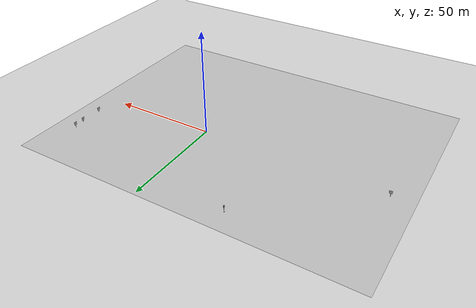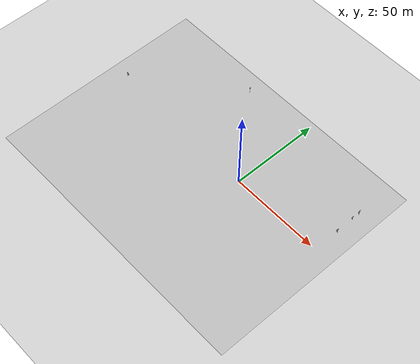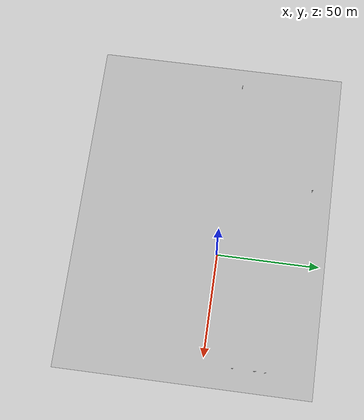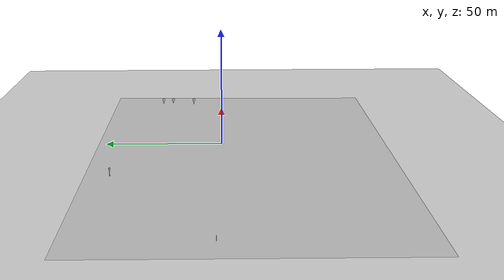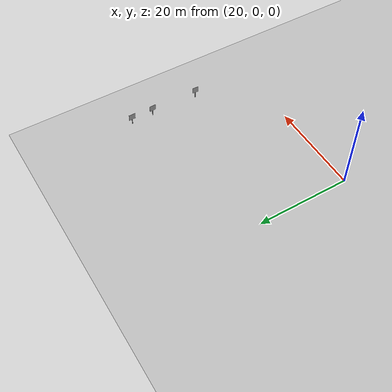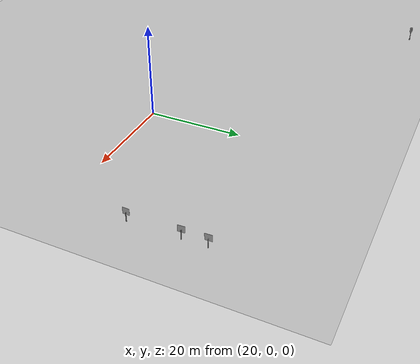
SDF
<sdf version="1.7">
 <world name="default">
  <light name="sun" type="directional">
   <pose>0 0 10 0 -0 0</pose>
   <diffuse>0.8 0.8 0.8 1</diffuse>
   <specular>0.2 0.2 0.2 1</specular>
   <attenuation>
    <range>1000</range>
    <constant>0.9</constant>
    <linear>0.01</linear>
    <quadratic>0.001</quadratic>
   </attenuation>
   <direction>-0.5 0.1 -0.9</direction>
   <spot><inner_angle>0</inner_angle><outer_angle>0</outer_angle><falloff>0</falloff></spot>
  </light>
  <model name="ground_plane">
   <static>1</static>
   <link name="link">
    <collision name="collision">
     <geometry><plane><normal>0 0 1</normal><size>100 100</size></plane></geometry>
     <surface><friction><ode><mu>100</mu><mu2>50</mu2></ode></friction></surface>
    </collision>
    <visual name="visual">
     <cast_shadows>0</cast_shadows>
     <geometry><plane><normal>0 0 1</normal><size>100 100</size></plane></geometry>
     <material>
      <script><uri>file://media/materials/scripts/gazebo.material</uri><name>Gazebo/Grey</name></script>
     </material>
    </visual>
   </link>
  </model>
  <gravity>0 0 -9.8</gravity>
  <magnetic_field>6e-06 2.3e-05 -4.2e-05</magnetic_field>
  <atmosphere type="adiabatic"/>
  <physics type="ode">
   <max_step_size>0.001</max_step_size>
   <real_time_factor>1</real_time_factor>
   <real_time_update_rate>1000</real_time_update_rate>
  </physics>
  <scene><ambient>0.4 0.4 0.4 1</ambient><background>0.7 0.7 0.7 1</background><shadows>1</shadows></scene>
  <audio><device>default</device></audio>
  <spherical_coordinates>
   <surface_model>EARTH_WGS84</surface_model>
   <latitude_deg>0</latitude_deg>
   <longitude_deg>0</longitude_deg>
   <elevation>0</elevation>
   <heading_deg>0</heading_deg>
  </spherical_coordinates>
  <model name="son_yol_1">
   <link name="link_0">
    <inertial>
     <mass>1</mass>
     <inertia>
      <ixx>0.166667</ixx>
      <ixy>0</ixy>
      <ixz>0</ixz>
      <iyy>0.166667</iyy>
      <iyz>0</iyz>
      <izz>0.166667</izz>
     </inertia>
    </inertial>
    <pose>0 -0 -0 1.5589 -0 0</pose>
    <visual name="visual">
     <geometry>
      <mesh>
       <uri>/home/dervis/similasyon_ws/src/self_driving_car_pkg/meshes/SON_YOL_1.obj</uri>
       <scale>1 1 1</scale>
      </mesh>
     </geometry>
     <material>
      <script>
       <uri>/home/dervis/similasyon_ws/src/self_driving_car_pkg/models/son_yol_1/materials/scripts</uri>
       <uri>/home/dervis/similasyon_ws/src/self_driving_car_pkg/models/son_yol_1/materials/textures</uri>
       <name>yol/Diffuse</name>
      </script>
     </material>
    </visual>
    <collision name="collision">
     <geometry>
      <mesh>
       <uri>/home/dervis/similasyon_ws/src/self_driving_car_pkg/meshes/SON_YOL_1.obj</uri>
       <scale>1 1 1</scale>
      </mesh>
     </geometry>
     <surface>
      <friction>
       <ode><mu>1</mu><mu2>1</mu2><fdir1>0 0 0</fdir1><slip1>0</slip1><slip2>0</slip2></ode>
       <torsional>
        <coefficient>1</coefficient>
        <patch_radius>0</patch_radius>
        <surface_radius>0</surface_radius>
        <use_patch_radius>1</use_patch_radius>
        <ode><slip>0</slip></ode>
       </torsional>
      </friction>
      <bounce><restitution_coefficient>0</restitution_coefficient><threshold>1e+06</threshold></bounce>
      <contact>
       <collide_without_contact>0</collide_without_contact>
       <collide_without_contact_bitmask>1</collide_without_contact_bitmask>
       <collide_bitmask>1</collide_bitmask>
       <ode>
        <soft_cfm>0</soft_cfm>
        <soft_erp>0.2</soft_erp>
        <kp>1e+13</kp>
        <kd>1</kd>
        <max_vel>0.01</max_vel>
        <min_depth>0</min_depth>
       </ode>
       <bullet>
        <split_impulse>1</split_impulse>
        <split_impulse_penetration_threshold>-0.01</split_impulse_penetration_threshold>
        <soft_cfm>0</soft_cfm>
        <soft_erp>0.2</soft_erp>
        <kp>1e+13</kp>
        <kd>1</kd>
       </bullet>
      </contact>
     </surface>
    </collision>
   </link>
   <static>1</static>
   <pose>62.2552 51.053 1.41424 0.01733 -0 0</pose>
  </model>
  <model name="trafik_işareti_epark">
   <link name="link_0">
    <inertial>
     <mass>1</mass>
     <inertia>
      <ixx>0.166667</ixx>
      <ixy>0</ixy>
      <ixz>0</ixz>
      <iyy>0.166667</iyy>
      <iyz>0</iyz>
      <izz>0.166667</izz>
     </inertia>
    </inertial>
    <pose>-0.009139 -0.004174 0.375388 1.56982 -0 0</pose>
    <visual name="visual">
     <geometry>
      <mesh>
       <uri>/home/dervis/similasyon_ws/src/self_driving_car_pkg/meshes/trafik_işareti_direk.obj</uri>
       <scale>1 1 1</scale>
      </mesh>
     </geometry>
     <material>
      <lighting>1</lighting>
      <script><uri>file://media/materials/scripts/gazebo.material</uri><name>Gazebo/Grey</name></script>
      <shader type="pixel"/>
      <emissive>0 0 0 1</emissive>
     </material>
    </visual>
    <collision name="collision">
     <geometry>
      <mesh>
       <uri>/home/dervis/similasyon_ws/src/self_driving_car_pkg/meshes/trafik_işareti_direk.obj</uri>
       <scale>1 1 1</scale>
      </mesh>
     </geometry>
     <surface>
      <friction>
       <ode><mu>1</mu><mu2>1</mu2><fdir1>0 0 0</fdir1><slip1>0</slip1><slip2>0</slip2></ode>
       <torsional>
        <coefficient>1</coefficient>
        <patch_radius>0</patch_radius>
        <surface_radius>0</surface_radius>
        <use_patch_radius>1</use_patch_radius>
        <ode><slip>0</slip></ode>
       </torsional>
      </friction>
      <bounce><restitution_coefficient>0</restitution_coefficient><threshold>1e+06</threshold></bounce>
      <contact>
       <collide_without_contact>0</collide_without_contact>
       <collide_without_contact_bitmask>1</collide_without_contact_bitmask>
       <collide_bitmask>1</collide_bitmask>
       <ode>
        <soft_cfm>0</soft_cfm>
        <soft_erp>0.2</soft_erp>
        <kp>1e+13</kp>
        <kd>1</kd>
        <max_vel>0.01</max_vel>
        <min_depth>0</min_depth>
       </ode>
       <bullet>
        <split_impulse>1</split_impulse>
        <split_impulse_penetration_threshold>-0.01</split_impulse_penetration_threshold>
        <soft_cfm>0</soft_cfm>
        <soft_erp>0.2</soft_erp>
        <kp>1e+13</kp>
        <kd>1</kd>
       </bullet>
      </contact>
     </surface>
    </collision>
   </link>
   <link name="link_1">
    <inertial>
     <mass>1</mass>
     <inertia>
      <ixx>0.166667</ixx>
      <ixy>0</ixy>
      <ixz>0</ixz>
      <iyy>0.166667</iyy>
      <iyz>0</iyz>
      <izz>0.166667</izz>
     </inertia>
    </inertial>
    <pose>0.009139 0.004174 -0.375386 1.55964 -0 0</pose>
    <visual name="visual">
     <geometry>
      <mesh>
       <uri>/home/dervis/similasyon_ws/src/self_driving_car_pkg/meshes/trafik_işareti_kare.obj</uri>
       <scale>1 1 1</scale>
      </mesh>
     </geometry>
     <material>
      <script>
       <uri>model://trafik_işareti_epark/materials/script</uri>
       <uri>model://trafik_işareti_epark/materials/texture</uri>
       <name>trafik_işareti_epark/Diffuse</name>
      </script>
     </material>
    </visual>
    <collision name="collision">
     <geometry>
      <mesh>
       <uri>/home/dervis/similasyon_ws/src/self_driving_car_pkg/meshes/trafik_işareti_kare.obj</uri>
       <scale>1 1 1</scale>
      </mesh>
     </geometry>
     <surface>
      <friction>
       <ode><mu>1</mu><mu2>1</mu2><fdir1>0 0 0</fdir1><slip1>0</slip1><slip2>0</slip2></ode>
       <torsional>
        <coefficient>1</coefficient>
        <patch_radius>0</patch_radius>
        <surface_radius>0</surface_radius>
        <use_patch_radius>1</use_patch_radius>
        <ode><slip>0</slip></ode>
       </torsional>
      </friction>
      <bounce><restitution_coefficient>0</restitution_coefficient><threshold>1e+06</threshold></bounce>
      <contact>
       <collide_without_contact>0</collide_without_contact>
       <collide_without_contact_bitmask>1</collide_without_contact_bitmask>
       <collide_bitmask>1</collide_bitmask>
       <ode>
        <soft_cfm>0</soft_cfm>
        <soft_erp>0.2</soft_erp>
        <kp>1e+13</kp>
        <kd>1</kd>
        <max_vel>0.01</max_vel>
        <min_depth>0</min_depth>
       </ode>
       <bullet>
        <split_impulse>1</split_impulse>
        <split_impulse_penetration_threshold>-0.01</split_impulse_penetration_threshold>
        <soft_cfm>0</soft_cfm>
        <soft_erp>0.2</soft_erp>
        <kp>1e+13</kp>
        <kd>1</kd>
       </bullet>
      </contact>
     </surface>
    </collision>
   </link>
   <joint name="link_0_JOINT_1" type="fixed">
    <parent>link_0</parent>
    <child>link_1</child>
    <physics>
     <ode><limit><cfm>0</cfm><erp>0.2</erp></limit><suspension><cfm>0</cfm><erp>0.2</erp></suspension></ode>
    </physics>
   </joint>
   <static>1</static>
   <pose>53.7051 14.0286 1.86916 0 0 -1.61925</pose>
  </model>
  <model name="trafik_işareti_epark_0">
   <link name="link_0">
    <inertial>
     <mass>1</mass>
     <inertia>
      <ixx>0.166667</ixx>
      <ixy>0</ixy>
      <ixz>0</ixz>
      <iyy>0.166667</iyy>
      <iyz>0</iyz>
      <izz>0.166667</izz>
     </inertia>
    </inertial>
    <pose>-0.009139 -0.004174 0.375388 1.56982 -0 0</pose>
    <visual name="visual">
     <geometry>
      <mesh>
       <uri>/home/dervis/similasyon_ws/src/self_driving_car_pkg/meshes/trafik_işareti_direk.obj</uri>
       <scale>1 1 1</scale>
      </mesh>
     </geometry>
     <material>
      <lighting>1</lighting>
      <script><uri>file://media/materials/scripts/gazebo.material</uri><name>Gazebo/Grey</name></script>
      <shader type="pixel"/>
      <emissive>0 0 0 1</emissive>
     </material>
    </visual>
    <collision name="collision">
     <geometry>
      <mesh>
       <uri>/home/dervis/similasyon_ws/src/self_driving_car_pkg/meshes/trafik_işareti_direk.obj</uri>
       <scale>1 1 1</scale>
      </mesh>
     </geometry>
     <surface>
      <friction>
       <ode><mu>1</mu><mu2>1</mu2><fdir1>0 0 0</fdir1><slip1>0</slip1><slip2>0</slip2></ode>
       <torsional>
        <coefficient>1</coefficient>
        <patch_radius>0</patch_radius>
        <surface_radius>0</surface_radius>
        <use_patch_radius>1</use_patch_radius>
        <ode><slip>0</slip></ode>
       </torsional>
      </friction>
      <bounce><restitution_coefficient>0</restitution_coefficient><threshold>1e+06</threshold></bounce>
      <contact>
       <collide_without_contact>0</collide_without_contact>
       <collide_without_contact_bitmask>1</collide_without_contact_bitmask>
       <collide_bitmask>1</collide_bitmask>
       <ode>
        <soft_cfm>0</soft_cfm>
        <soft_erp>0.2</soft_erp>
        <kp>1e+13</kp>
        <kd>1</kd>
        <max_vel>0.01</max_vel>
        <min_depth>0</min_depth>
       </ode>
       <bullet>
        <split_impulse>1</split_impulse>
        <split_impulse_penetration_threshold>-0.01</split_impulse_penetration_threshold>
        <soft_cfm>0</soft_cfm>
        <soft_erp>0.2</soft_erp>
        <kp>1e+13</kp>
        <kd>1</kd>
       </bullet>
      </contact>
     </surface>
    </collision>
   </link>
   <link name="link_1">
    <inertial>
     <mass>1</mass>
     <inertia>
      <ixx>0.166667</ixx>
      <ixy>0</ixy>
      <ixz>0</ixz>
      <iyy>0.166667</iyy>
      <iyz>0</iyz>
      <izz>0.166667</izz>
     </inertia>
    </inertial>
    <pose>0.009139 0.004174 -0.375386 1.55964 -0 0</pose>
    <visual name="visual">
     <geometry>
      <mesh>
       <uri>/home/dervis/similasyon_ws/src/self_driving_car_pkg/meshes/trafik_işareti_kare.obj</uri>
       <scale>1 1 1</scale>
      </mesh>
     </geometry>
     <material>
      <script>
       <uri>model://trafik_işareti_epark/materials/script</uri>
       <uri>model://trafik_işareti_epark/materials/texture</uri>
       <name>trafik_işareti_epark/Diffuse</name>
      </script>
     </material>
    </visual>
    <collision name="collision">
     <geometry>
      <mesh>
       <uri>/home/dervis/similasyon_ws/src/self_driving_car_pkg/meshes/trafik_işareti_kare.obj</uri>
       <scale>1 1 1</scale>
      </mesh>
     </geometry>
     <surface>
      <friction>
       <ode><mu>1</mu><mu2>1</mu2><fdir1>0 0 0</fdir1><slip1>0</slip1><slip2>0</slip2></ode>
       <torsional>
        <coefficient>1</coefficient>
        <patch_radius>0</patch_radius>
        <surface_radius>0</surface_radius>
        <use_patch_radius>1</use_patch_radius>
        <ode><slip>0</slip></ode>
       </torsional>
      </friction>
      <bounce><restitution_coefficient>0</restitution_coefficient><threshold>1e+06</threshold></bounce>
      <contact>
       <collide_without_contact>0</collide_without_contact>
       <collide_without_contact_bitmask>1</collide_without_contact_bitmask>
       <collide_bitmask>1</collide_bitmask>
       <ode>
        <soft_cfm>0</soft_cfm>
        <soft_erp>0.2</soft_erp>
        <kp>1e+13</kp>
        <kd>1</kd>
        <max_vel>0.01</max_vel>
        <min_depth>0</min_depth>
       </ode>
       <bullet>
        <split_impulse>1</split_impulse>
        <split_impulse_penetration_threshold>-0.01</split_impulse_penetration_threshold>
        <soft_cfm>0</soft_cfm>
        <soft_erp>0.2</soft_erp>
        <kp>1e+13</kp>
        <kd>1</kd>
       </bullet>
      </contact>
     </surface>
    </collision>
   </link>
   <joint name="link_0_JOINT_1" type="fixed">
    <parent>link_0</parent>
    <child>link_1</child>
    <physics>
     <ode><limit><cfm>0</cfm><erp>0.2</erp></limit><suspension><cfm>0</cfm><erp>0.2</erp></suspension></ode>
    </physics>
   </joint>
   <static>1</static>
   <pose>53.6997 24.4117 1.90878 0 0 -1.52739</pose>
  </model>
  <model name="trafik_işareti_park">
   <link name="link_0">
    <inertial>
     <mass>1</mass>
     <inertia>
      <ixx>0.166667</ixx>
      <ixy>0</ixy>
      <ixz>0</ixz>
      <iyy>0.166667</iyy>
      <iyz>0</iyz>
      <izz>0.166667</izz>
     </inertia>
    </inertial>
    <pose>-0.009139 -0.004174 0.375388 1.56982 -0 0</pose>
    <visual name="visual">
     <geometry>
      <mesh>
       <uri>/home/dervis/similasyon_ws/src/self_driving_car_pkg/meshes/trafik_işareti_direk.obj</uri>
       <scale>1 1 1</scale>
      </mesh>
     </geometry>
     <material>
      <lighting>1</lighting>
      <script><uri>file://media/materials/scripts/gazebo.material</uri><name>Gazebo/Grey</name></script>
      <shader type="pixel"/>
      <emissive>0 0 0 1</emissive>
     </material>
    </visual>
    <collision name="collision">
     <geometry>
      <mesh>
       <uri>/home/dervis/similasyon_ws/src/self_driving_car_pkg/meshes/trafik_işareti_direk.obj</uri>
       <scale>1 1 1</scale>
      </mesh>
     </geometry>
     <surface>
      <friction>
       <ode><mu>1</mu><mu2>1</mu2><fdir1>0 0 0</fdir1><slip1>0</slip1><slip2>0</slip2></ode>
       <torsional>
        <coefficient>1</coefficient>
        <patch_radius>0</patch_radius>
        <surface_radius>0</surface_radius>
        <use_patch_radius>1</use_patch_radius>
        <ode><slip>0</slip></ode>
       </torsional>
      </friction>
      <bounce><restitution_coefficient>0</restitution_coefficient><threshold>1e+06</threshold></bounce>
      <contact>
       <collide_without_contact>0</collide_without_contact>
       <collide_without_contact_bitmask>1</collide_without_contact_bitmask>
       <collide_bitmask>1</collide_bitmask>
       <ode>
        <soft_cfm>0</soft_cfm>
        <soft_erp>0.2</soft_erp>
        <kp>1e+13</kp>
        <kd>1</kd>
        <max_vel>0.01</max_vel>
        <min_depth>0</min_depth>
       </ode>
       <bullet>
        <split_impulse>1</split_impulse>
        <split_impulse_penetration_threshold>-0.01</split_impulse_penetration_threshold>
        <soft_cfm>0</soft_cfm>
        <soft_erp>0.2</soft_erp>
        <kp>1e+13</kp>
        <kd>1</kd>
       </bullet>
      </contact>
     </surface>
    </collision>
   </link>
   <link name="link_1">
    <inertial>
     <mass>1</mass>
     <inertia>
      <ixx>0.166667</ixx>
      <ixy>0</ixy>
      <ixz>0</ixz>
      <iyy>0.166667</iyy>
      <iyz>0</iyz>
      <izz>0.166667</izz>
     </inertia>
    </inertial>
    <pose>0.009139 0.004174 -0.375386 1.55964 -0 0</pose>
    <visual name="visual">
     <geometry>
      <mesh>
       <uri>/home/dervis/similasyon_ws/src/self_driving_car_pkg/meshes/trafik_işareti_kare.obj</uri>
       <scale>1 1 1</scale>
      </mesh>
     </geometry>
     <material>
      <script>
       <uri>model://trafik_işareti_park/materials/script</uri>
       <uri>model://trafik_işareti_park/materials/texture</uri>
       <name>trafik_işareti_park/Diffuse</name>
      </script>
     </material>
    </visual>
    <collision name="collision">
     <geometry>
      <mesh>
       <uri>/home/dervis/similasyon_ws/src/self_driving_car_pkg/meshes/trafik_işareti_kare.obj</uri>
       <scale>1 1 1</scale>
      </mesh>
     </geometry>
     <surface>
      <friction>
       <ode><mu>1</mu><mu2>1</mu2><fdir1>0 0 0</fdir1><slip1>0</slip1><slip2>0</slip2></ode>
       <torsional>
        <coefficient>1</coefficient>
        <patch_radius>0</patch_radius>
        <surface_radius>0</surface_radius>
        <use_patch_radius>1</use_patch_radius>
        <ode><slip>0</slip></ode>
       </torsional>
      </friction>
      <bounce><restitution_coefficient>0</restitution_coefficient><threshold>1e+06</threshold></bounce>
      <contact>
       <collide_without_contact>0</collide_without_contact>
       <collide_without_contact_bitmask>1</collide_without_contact_bitmask>
       <collide_bitmask>1</collide_bitmask>
       <ode>
        <soft_cfm>0</soft_cfm>
        <soft_erp>0.2</soft_erp>
        <kp>1e+13</kp>
        <kd>1</kd>
        <max_vel>0.01</max_vel>
        <min_depth>0</min_depth>
       </ode>
       <bullet>
        <split_impulse>1</split_impulse>
        <split_impulse_penetration_threshold>-0.01</split_impulse_penetration_threshold>
        <soft_cfm>0</soft_cfm>
        <soft_erp>0.2</soft_erp>
        <kp>1e+13</kp>
        <kd>1</kd>
       </bullet>
      </contact>
     </surface>
    </collision>
   </link>
   <joint name="link_0_JOINT_1" type="fixed">
    <parent>link_0</parent>
    <child>link_1</child>
    <physics>
     <ode><limit><cfm>0</cfm><erp>0.2</erp></limit><suspension><cfm>0</cfm><erp>0.2</erp></suspension></ode>
    </physics>
   </joint>
   <static>1</static>
   <pose>53.6653 29.2424 1.93508 0 -0 -1.55706</pose>
  </model>
  <model name="trafik_işareti_durak">
   <link name="link_0">
    <inertial>
     <mass>1</mass>
     <inertia>
      <ixx>0.166667</ixx>
      <ixy>0</ixy>
      <ixz>0</ixz>
      <iyy>0.166667</iyy>
      <iyz>0</iyz>
      <izz>0.166667</izz>
     </inertia>
    </inertial>
    <pose>-0.009139 -0.004174 0.375388 1.56982 -0 0</pose>
    <visual name="visual">
     <geometry>
      <mesh>
       <uri>/home/dervis/similasyon_ws/src/self_driving_car_pkg/meshes/trafik_işareti_direk.obj</uri>
       <scale>1 1 1</scale>
      </mesh>
     </geometry>
     <material>
      <lighting>1</lighting>
      <script><uri>file://media/materials/scripts/gazebo.material</uri><name>Gazebo/Grey</name></script>
      <shader type="pixel"/>
      <emissive>0 0 0 1</emissive>
     </material>
    </visual>
    <collision name="collision">
     <geometry>
      <mesh>
       <uri>/home/dervis/similasyon_ws/src/self_driving_car_pkg/meshes/trafik_işareti_direk.obj</uri>
       <scale>1 1 1</scale>
      </mesh>
     </geometry>
     <surface>
      <friction>
       <ode><mu>1</mu><mu2>1</mu2><fdir1>0 0 0</fdir1><slip1>0</slip1><slip2>0</slip2></ode>
       <torsional>
        <coefficient>1</coefficient>
        <patch_radius>0</patch_radius>
        <surface_radius>0</surface_radius>
        <use_patch_radius>1</use_patch_radius>
        <ode><slip>0</slip></ode>
       </torsional>
      </friction>
      <bounce><restitution_coefficient>0</restitution_coefficient><threshold>1e+06</threshold></bounce>
      <contact>
       <collide_without_contact>0</collide_without_contact>
       <collide_without_contact_bitmask>1</collide_without_contact_bitmask>
       <collide_bitmask>1</collide_bitmask>
       <ode>
        <soft_cfm>0</soft_cfm>
        <soft_erp>0.2</soft_erp>
        <kp>1e+13</kp>
        <kd>1</kd>
        <max_vel>0.01</max_vel>
        <min_depth>0</min_depth>
       </ode>
       <bullet>
        <split_impulse>1</split_impulse>
        <split_impulse_penetration_threshold>-0.01</split_impulse_penetration_threshold>
        <soft_cfm>0</soft_cfm>
        <soft_erp>0.2</soft_erp>
        <kp>1e+13</kp>
        <kd>1</kd>
       </bullet>
      </contact>
     </surface>
    </collision>
   </link>
   <link name="link_1">
    <inertial>
     <mass>1</mass>
     <inertia>
      <ixx>0.166667</ixx>
      <ixy>0</ixy>
      <ixz>0</ixz>
      <iyy>0.166667</iyy>
      <iyz>0</iyz>
      <izz>0.166667</izz>
     </inertia>
    </inertial>
    <pose>0.009139 0.004174 -0.375386 1.55964 -0 0</pose>
    <visual name="visual">
     <geometry>
      <mesh>
       <uri>/home/dervis/similasyon_ws/src/self_driving_car_pkg/meshes/trafik_işareti_kare.obj</uri>
       <scale>1 1 1</scale>
      </mesh>
     </geometry>
     <material>
      <script>
       <uri>model://trafik_işareti_durak/materials/script</uri>
       <uri>model://trafik_işareti_durak/materials/texture</uri>
       <name>trafik_işareti_durak/Diffuse</name>
      </script>
     </material>
    </visual>
    <collision name="collision">
     <geometry>
      <mesh>
       <uri>/home/dervis/similasyon_ws/src/self_driving_car_pkg/meshes/trafik_işareti_kare.obj</uri>
       <scale>1 1 1</scale>
      </mesh>
     </geometry>
     <surface>
      <friction>
       <ode><mu>1</mu><mu2>1</mu2><fdir1>0 0 0</fdir1><slip1>0</slip1><slip2>0</slip2></ode>
       <torsional>
        <coefficient>1</coefficient>
        <patch_radius>0</patch_radius>
        <surface_radius>0</surface_radius>
        <use_patch_radius>1</use_patch_radius>
        <ode><slip>0</slip></ode>
       </torsional>
      </friction>
      <bounce><restitution_coefficient>0</restitution_coefficient><threshold>1e+06</threshold></bounce>
      <contact>
       <collide_without_contact>0</collide_without_contact>
       <collide_without_contact_bitmask>1</collide_without_contact_bitmask>
       <collide_bitmask>1</collide_bitmask>
       <ode>
        <soft_cfm>0</soft_cfm>
        <soft_erp>0.2</soft_erp>
        <kp>1e+13</kp>
        <kd>1</kd>
        <max_vel>0.01</max_vel>
        <min_depth>0</min_depth>
       </ode>
       <bullet>
        <split_impulse>1</split_impulse>
        <split_impulse_penetration_threshold>-0.01</split_impulse_penetration_threshold>
        <soft_cfm>0</soft_cfm>
        <soft_erp>0.2</soft_erp>
        <kp>1e+13</kp>
        <kd>1</kd>
       </bullet>
      </contact>
     </surface>
    </collision>
   </link>
   <joint name="link_0_JOINT_1" type="fixed">
    <parent>link_0</parent>
    <child>link_1</child>
    <physics>
     <ode><limit><cfm>0</cfm><erp>0.2</erp></limit><suspension><cfm>0</cfm><erp>0.2</erp></suspension></ode>
    </physics>
   </joint>
   <static>1</static>
   <pose>-88.6678 1.99437 1.8236 0 -0 3.11801</pose>
  </model>
  <model name="trafik_lambası">
   <link name="link_0">
    <inertial>
     <mass>1</mass>
     <inertia>
      <ixx>0.166667</ixx>
      <ixy>0</ixy>
      <ixz>0</ixz>
      <iyy>0.166667</iyy>
      <iyz>0</iyz>
      <izz>0.166667</izz>
     </inertia>
    </inertial>
    <pose>2e-06 1e-06 -2e-06 1.56987 -0 0</pose>
    <visual name="visual">
     <geometry>
      <mesh>
       <uri>/home/dervis/similasyon_ws/src/self_driving_car_pkg/meshes/trafik_lamba_son.obj</uri>
       <scale>1 1 1</scale>
      </mesh>
     </geometry>
     <material>
      <lighting>1</lighting>
      <script><uri>file://media/materials/scripts/gazebo.material</uri><name>Gazebo/Grey</name></script>
      <shader type="pixel"/>
     </material>
    </visual>
    <collision name="collision">
     <geometry>
      <mesh>
       <uri>/home/dervis/similasyon_ws/src/self_driving_car_pkg/meshes/trafik_lamba_son.obj</uri>
       <scale>1 1 1</scale>
      </mesh>
     </geometry>
     <surface>
      <friction>
       <ode><mu>1</mu><mu2>1</mu2><fdir1>0 0 0</fdir1><slip1>0</slip1><slip2>0</slip2></ode>
       <torsional>
        <coefficient>1</coefficient>
        <patch_radius>0</patch_radius>
        <surface_radius>0</surface_radius>
        <use_patch_radius>1</use_patch_radius>
        <ode><slip>0</slip></ode>
       </torsional>
      </friction>
      <bounce><restitution_coefficient>0</restitution_coefficient><threshold>1e+06</threshold></bounce>
      <contact>
       <collide_without_contact>0</collide_without_contact>
       <collide_without_contact_bitmask>1</collide_without_contact_bitmask>
       <collide_bitmask>1</collide_bitmask>
       <ode>
        <soft_cfm>0</soft_cfm>
        <soft_erp>0.2</soft_erp>
        <kp>1e+13</kp>
        <kd>1</kd>
        <max_vel>0.01</max_vel>
        <min_depth>0</min_depth>
       </ode>
       <bullet>
        <split_impulse>1</split_impulse>
        <split_impulse_penetration_threshold>-0.01</split_impulse_penetration_threshold>
        <soft_cfm>0</soft_cfm>
        <soft_erp>0.2</soft_erp>
        <kp>1e+13</kp>
        <kd>1</kd>
       </bullet>
      </contact>
     </surface>
    </collision>
   </link>
   <static>1</static>
   <pose>-37.4266 42.8966 2.614 0 -0 1.61198</pose>
  </model>
 </world>
</sdf>
